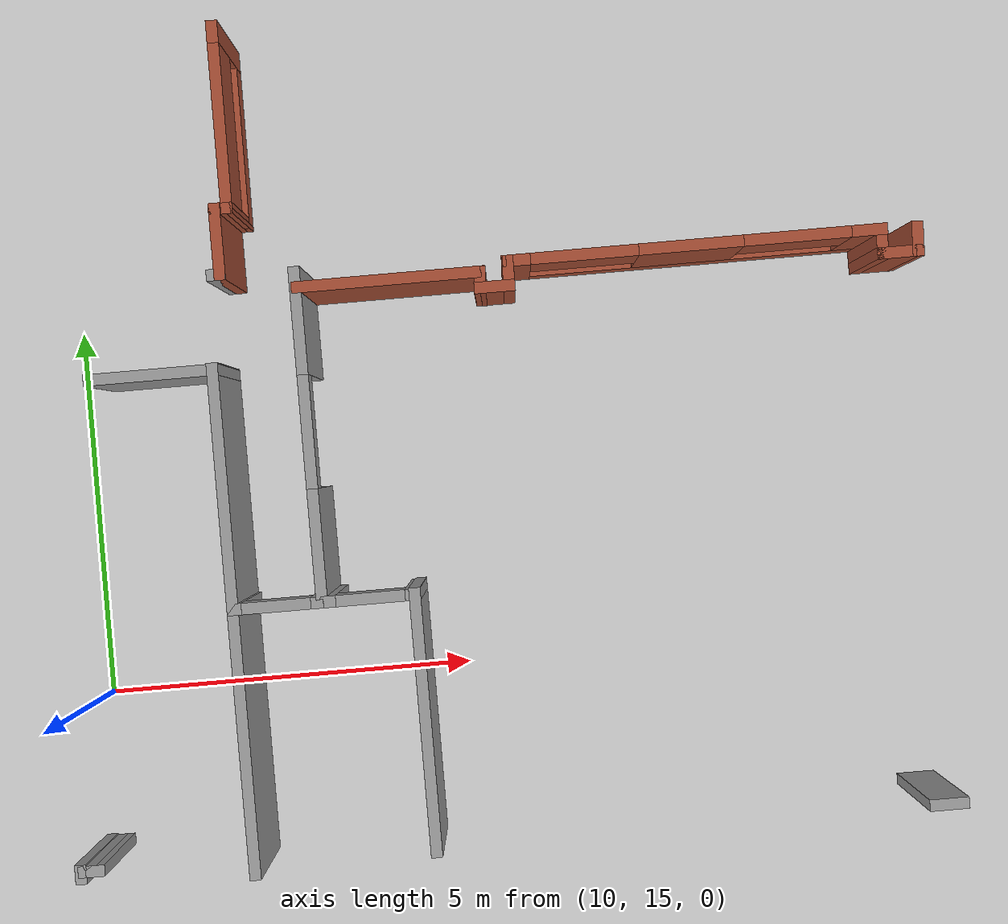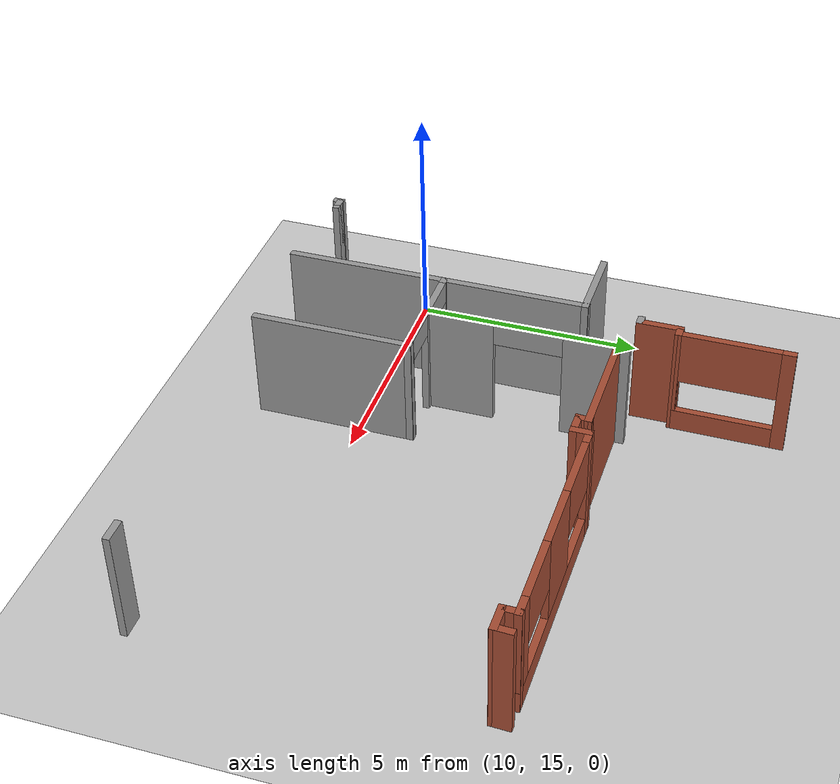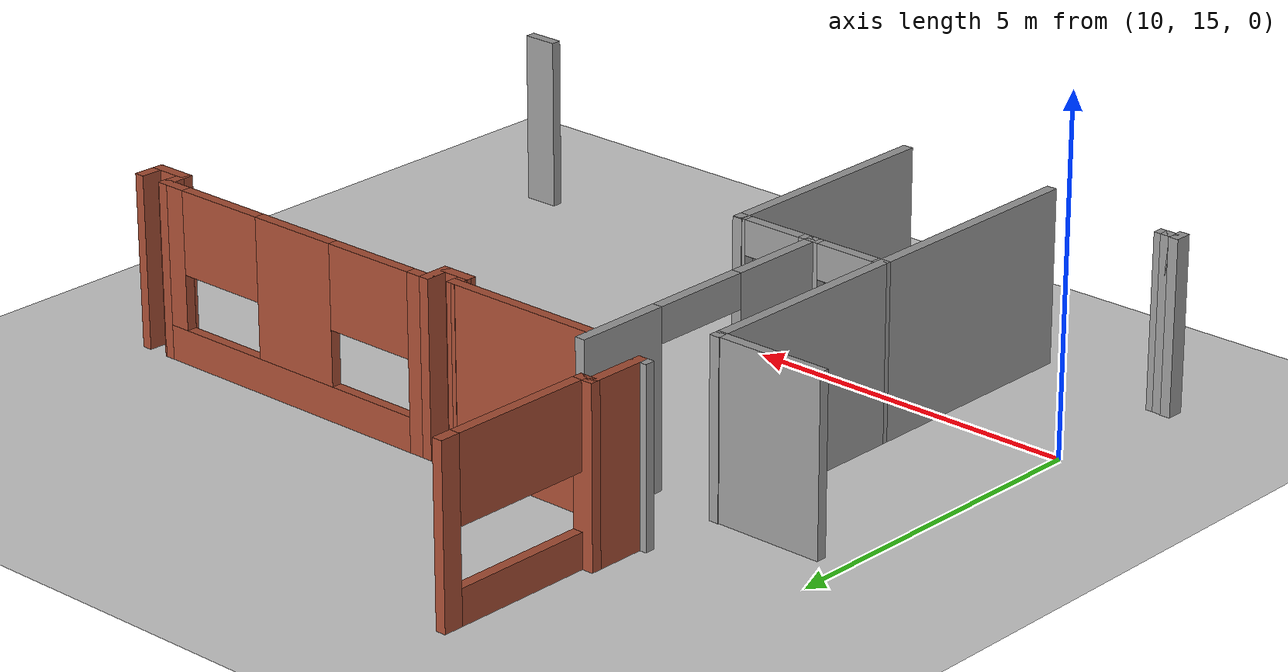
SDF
<sdf version="1.6">
 <world name="default">
  <model name="ground_plane">
   <static>1</static>
   <link name="link">
    <collision name="collision">
     <geometry><plane><normal>0 0 1</normal><size>100 100</size></plane></geometry>
     <surface><friction><ode><mu>100</mu><mu2>50</mu2></ode></friction></surface>
    </collision>
    <visual name="visual">
     <cast_shadows>0</cast_shadows>
     <geometry><plane><normal>0 0 1</normal><size>100 100</size></plane></geometry>
     <material>
      <script><uri>file://media/materials/scripts/gazebo.material</uri><name>Gazebo/Grey</name></script>
     </material>
    </visual>
   </link>
  </model>
  <model name="CVSSP">
   <pose>23.8714 24.094 0 0 -0 0</pose>
   <link name="Wall_451">
    <collision name="Wall_451_Collision">
     <geometry><box><size>0.25 0.15 2.5</size></box></geometry>
     <pose>0 0 1.25 0 -0 0</pose>
    </collision>
    <visual name="Wall_451_Visual">
     <pose>0 0 1.25 0 -0 0</pose>
     <geometry><box><size>0.25 0.15 2.5</size></box></geometry>
     <material>
      <script><uri>file://media/materials/scripts/gazebo.material</uri><name>Gazebo/Grey</name></script>
      <ambient>1 1 1 1</ambient>
     </material>
    </visual>
    <pose>-11.6734 -3.62478 0 0 -0 0</pose>
   </link>
   <link name="Wall_452">
    <collision name="Wall_452_Collision">
     <geometry><box><size>1 0.15 2.5</size></box></geometry>
     <pose>0 0 1.25 0 -0 0</pose>
    </collision>
    <visual name="Wall_452_Visual">
     <pose>0 0 1.25 0 -0 0</pose>
     <geometry><box><size>1 0.15 2.5</size></box></geometry>
     <material>
      <script><uri>file://media/materials/scripts/gazebo.material</uri><name>Gazebo/Bricks</name></script>
      <ambient>1 1 1 1</ambient>
     </material>
    </visual>
    <pose>-11.6234 -3.19978 0 0 -0 1.5708</pose>
   </link>
   <link name="Wall_453">
    <collision name="Wall_453_Collision">
     <geometry><box><size>0.31087 0.15 2.5</size></box></geometry>
     <pose>0 0 1.25 0 -0 0</pose>
    </collision>
    <visual name="Wall_453_Visual">
     <pose>0 0 1.25 0 -0 0</pose>
     <geometry><box><size>0.31087 0.15 2.5</size></box></geometry>
     <material>
      <script><uri>file://media/materials/scripts/gazebo.material</uri><name>Gazebo/Bricks</name></script>
      <ambient>1 1 1 1</ambient>
     </material>
    </visual>
    <pose>-11.543 -2.77478 0 0 -0 0</pose>
   </link>
   <link name="Wall_456">
    <pose>-11.4588 -1.59696 0 0 0 -1.57398</pose>
    <visual name="Wall_456_Visual_0">
     <pose>-1.10718 0 1.25 0 -0 0</pose>
     <geometry><box><size>0.291309 0.15 2.5</size></box></geometry>
     <material>
      <script><uri>file://media/materials/scripts/gazebo.material</uri><name>Gazebo/Bricks</name></script>
      <ambient>1 1 1 1</ambient>
     </material>
    </visual>
    <collision name="Wall_456_Collision_0">
     <geometry><box><size>0.291309 0.15 2.5</size></box></geometry>
     <pose>-1.10718 0 1.25 0 -0 0</pose>
    </collision>
    <visual name="Wall_456_Visual_1">
     <pose>0.145655 0 0.25 0 -0 0</pose>
     <geometry><box><size>2.21435 0.15 0.5</size></box></geometry>
     <material>
      <script><uri>file://media/materials/scripts/gazebo.material</uri><name>Gazebo/Bricks</name></script>
      <ambient>1 1 1 1</ambient>
     </material>
    </visual>
    <collision name="Wall_456_Collision_1">
     <geometry><box><size>2.21435 0.15 0.5</size></box></geometry>
     <pose>0.145655 0 0.25 0 -0 0</pose>
    </collision>
    <visual name="Wall_456_Visual_2">
     <pose>1.18044 0 1.5 0 -0 0</pose>
     <geometry><box><size>0.144785 0.15 2</size></box></geometry>
     <material>
      <script><uri>file://media/materials/scripts/gazebo.material</uri><name>Gazebo/Bricks</name></script>
      <ambient>1 1 1 1</ambient>
     </material>
    </visual>
    <collision name="Wall_456_Collision_2">
     <geometry><box><size>0.144785 0.15 2</size></box></geometry>
     <pose>1.18044 0 1.5 0 -0 0</pose>
    </collision>
    <visual name="Wall_456_Visual_3">
     <pose>0.073262 0 1.9 0 -0 0</pose>
     <geometry><box><size>2.06957 0.15 1.2</size></box></geometry>
     <material>
      <script><uri>file://media/materials/scripts/gazebo.material</uri><name>Gazebo/Bricks</name></script>
      <ambient>1 1 1 1</ambient>
     </material>
    </visual>
    <collision name="Wall_456_Collision_3">
     <geometry><box><size>2.06957 0.15 1.2</size></box></geometry>
     <pose>0.073262 0 1.9 0 -0 0</pose>
    </collision>
   </link>
   <link name="Wall_524">
    <pose>-10.6649 -5.806 0 0 0 -1.5708</pose>
    <visual name="Wall_524_Visual_0">
     <pose>-1.50177 0 1.25 0 -0 0</pose>
     <geometry><box><size>1.40395 0.15 2.5</size></box></geometry>
     <material>
      <script><uri>file://media/materials/scripts/gazebo.material</uri><name>Gazebo/Grey</name></script>
      <ambient>0.588235 0.588235 0.588235 1</ambient>
     </material>
    </visual>
    <collision name="Wall_524_Collision_0">
     <geometry><box><size>1.40395 0.15 2.5</size></box></geometry>
     <pose>-1.50177 0 1.25 0 -0 0</pose>
    </collision>
    <visual name="Wall_524_Visual_1">
     <pose>1.44258 0 1.25 0 -0 0</pose>
     <geometry><box><size>1.52232 0.15 2.5</size></box></geometry>
     <material>
      <script><uri>file://media/materials/scripts/gazebo.material</uri><name>Gazebo/Grey</name></script>
      <ambient>0.588235 0.588235 0.588235 1</ambient>
     </material>
    </visual>
    <collision name="Wall_524_Collision_1">
     <geometry><box><size>1.52232 0.15 2.5</size></box></geometry>
     <pose>1.44258 0 1.25 0 -0 0</pose>
    </collision>
    <visual name="Wall_524_Visual_2">
     <pose>-0.059186 0 2.25 0 -0 0</pose>
     <geometry><box><size>1.48121 0.15 0.5</size></box></geometry>
     <material>
      <script><uri>file://media/materials/scripts/gazebo.material</uri><name>Gazebo/Grey</name></script>
      <ambient>0.588235 0.588235 0.588235 1</ambient>
     </material>
    </visual>
    <collision name="Wall_524_Collision_2">
     <geometry><box><size>1.48121 0.15 0.5</size></box></geometry>
     <pose>-0.059186 0 2.25 0 -0 0</pose>
    </collision>
   </link>
   <link name="Wall_525">
    <pose>-11.2447 -7.9568 0 0 -0 3.13973</pose>
    <visual name="Wall_525_Visual_0">
     <pose>-0.544548 0 1.25 0 -0 0</pose>
     <geometry><box><size>0.220502 0.15 2.5</size></box></geometry>
     <material>
      <script><uri>file://media/materials/scripts/gazebo.material</uri><name>Gazebo/Grey</name></script>
      <ambient>0.588235 0.588235 0.588235 1</ambient>
     </material>
    </visual>
    <collision name="Wall_525_Collision_0">
     <geometry><box><size>0.220502 0.15 2.5</size></box></geometry>
     <pose>-0.544548 0 1.25 0 -0 0</pose>
    </collision>
    <visual name="Wall_525_Visual_1">
     <pose>0.560251 0 1.25 0 -0 0</pose>
     <geometry><box><size>0.189095 0.15 2.5</size></box></geometry>
     <material>
      <script><uri>file://media/materials/scripts/gazebo.material</uri><name>Gazebo/Grey</name></script>
      <ambient>0.588235 0.588235 0.588235 1</ambient>
     </material>
    </visual>
    <collision name="Wall_525_Collision_1">
     <geometry><box><size>0.189095 0.15 2.5</size></box></geometry>
     <pose>0.560251 0 1.25 0 -0 0</pose>
    </collision>
    <visual name="Wall_525_Visual_2">
     <pose>0.015703 0 2.25 0 -0 0</pose>
     <geometry><box><size>0.9 0.15 0.5</size></box></geometry>
     <material>
      <script><uri>file://media/materials/scripts/gazebo.material</uri><name>Gazebo/Grey</name></script>
      <ambient>0.588235 0.588235 0.588235 1</ambient>
     </material>
    </visual>
    <collision name="Wall_525_Collision_2">
     <geometry><box><size>0.9 0.15 0.5</size></box></geometry>
     <pose>0.015703 0 2.25 0 -0 0</pose>
    </collision>
   </link>
   <link name="Wall_526">
    <collision name="Wall_526_Collision">
     <geometry><box><size>3.58305 0.15 2.5</size></box></geometry>
     <pose>0 0 1.25 0 -0 0</pose>
    </collision>
    <visual name="Wall_526_Visual">
     <pose>0 0 1.25 0 -0 0</pose>
     <geometry><box><size>3.58305 0.15 2.5</size></box></geometry>
     <material>
      <script><uri>file://media/materials/scripts/gazebo.material</uri><name>Gazebo/Grey</name></script>
      <ambient>0.588235 0.588235 0.588235 1</ambient>
     </material>
    </visual>
    <pose>-11.8234 -9.67224 0 0 0 -1.5702</pose>
   </link>
   <link name="Wall_528">
    <pose>-10.0632 -7.95787 0 0 -0 0</pose>
    <visual name="Wall_528_Visual_0">
     <pose>-0.550159 0 1.25 0 -0 0</pose>
     <geometry><box><size>0.253402 0.15 2.5</size></box></geometry>
     <material>
      <script><uri>file://media/materials/scripts/gazebo.material</uri><name>Gazebo/Grey</name></script>
      <ambient>0.588235 0.588235 0.588235 1</ambient>
     </material>
    </visual>
    <collision name="Wall_528_Collision_0">
     <geometry><box><size>0.253402 0.15 2.5</size></box></geometry>
     <pose>-0.550159 0 1.25 0 -0 0</pose>
    </collision>
    <visual name="Wall_528_Visual_1">
     <pose>0.576701 0 1.25 0 -0 0</pose>
     <geometry><box><size>0.200318 0.15 2.5</size></box></geometry>
     <material>
      <script><uri>file://media/materials/scripts/gazebo.material</uri><name>Gazebo/Grey</name></script>
      <ambient>0.588235 0.588235 0.588235 1</ambient>
     </material>
    </visual>
    <collision name="Wall_528_Collision_1">
     <geometry><box><size>0.200318 0.15 2.5</size></box></geometry>
     <pose>0.576701 0 1.25 0 -0 0</pose>
    </collision>
    <visual name="Wall_528_Visual_2">
     <pose>0.026542 0 2.25 0 -0 0</pose>
     <geometry><box><size>0.9 0.15 0.5</size></box></geometry>
     <material>
      <script><uri>file://media/materials/scripts/gazebo.material</uri><name>Gazebo/Grey</name></script>
      <ambient>0.588235 0.588235 0.588235 1</ambient>
     </material>
    </visual>
    <collision name="Wall_528_Collision_2">
     <geometry><box><size>0.9 0.15 0.5</size></box></geometry>
     <pose>0.026542 0 2.25 0 -0 0</pose>
    </collision>
   </link>
   <link name="Wall_529">
    <collision name="Wall_529_Collision">
     <geometry><box><size>3.5 0.15 2.5</size></box></geometry>
     <pose>0 0 1.25 0 -0 0</pose>
    </collision>
    <visual name="Wall_529_Visual">
     <pose>0 0 1.25 0 -0 0</pose>
     <geometry><box><size>3.5 0.15 2.5</size></box></geometry>
     <material>
      <script><uri>file://media/materials/scripts/gazebo.material</uri><name>Gazebo/Grey</name></script>
      <ambient>0.588235 0.588235 0.588235 1</ambient>
     </material>
    </visual>
    <pose>-9.4614 -9.62137 0 0 0 -1.5708</pose>
   </link>
   <link name="Wall_531">
    <collision name="Wall_531_Collision">
     <geometry><box><size>3.27645 0.15 2.5</size></box></geometry>
     <pose>0 0 1.25 0 -0 0</pose>
    </collision>
    <visual name="Wall_531_Visual">
     <pose>0 0 1.25 0 -0 0</pose>
     <geometry><box><size>3.27645 0.15 2.5</size></box></geometry>
     <material>
      <script><uri>file://media/materials/scripts/gazebo.material</uri><name>Gazebo/Grey</name></script>
      <ambient>0.588235 0.588235 0.588235 1</ambient>
     </material>
    </visual>
    <pose>-11.8245 -6.39249 0 0 -0 1.5708</pose>
   </link>
   <link name="Wall_558">
    <collision name="Wall_558_Collision">
     <geometry><box><size>0.25 0.15 2.5</size></box></geometry>
     <pose>0 0 1.25 0 -0 0</pose>
    </collision>
    <visual name="Wall_558_Visual">
     <pose>0 0 1.25 0 -0 0</pose>
     <geometry><box><size>0.25 0.15 2.5</size></box></geometry>
     <material>
      <script><uri>file://media/materials/scripts/gazebo.material</uri><name>Gazebo/Grey</name></script>
      <ambient>1 1 1 1</ambient>
     </material>
    </visual>
    <pose>-13.8779 -11.1683 0 0 -0 3.14159</pose>
   </link>
   <link name="Wall_559">
    <collision name="Wall_559_Collision">
     <geometry><box><size>0.25 0.15 2.5</size></box></geometry>
     <pose>0 0 1.25 0 -0 0</pose>
    </collision>
    <visual name="Wall_559_Visual">
     <pose>0 0 1.25 0 -0 0</pose>
     <geometry><box><size>0.25 0.15 2.5</size></box></geometry>
     <material>
      <script><uri>file://media/materials/scripts/gazebo.material</uri><name>Gazebo/Grey</name></script>
      <ambient>1 1 1 1</ambient>
     </material>
    </visual>
    <pose>-13.9779 -11.1683 0 0 -0 3.14159</pose>
   </link>
   <link name="Wall_562">
    <collision name="Wall_562_Collision">
     <geometry><box><size>0.249529 0.15 2.5</size></box></geometry>
     <pose>0 0 1.25 0 -0 0</pose>
    </collision>
    <visual name="Wall_562_Visual">
     <pose>0 0 1.25 0 -0 0</pose>
     <geometry><box><size>0.249529 0.15 2.5</size></box></geometry>
     <material>
      <script><uri>file://media/materials/scripts/gazebo.material</uri><name>Gazebo/Grey</name></script>
      <ambient>1 1 1 1</ambient>
     </material>
    </visual>
    <pose>-14.0684 -11.2015 0 0 0 -1.5708</pose>
   </link>
   <link name="Wall_588">
    <collision name="Wall_588_Collision">
     <geometry><box><size>1.75 0.15 2.5</size></box></geometry>
     <pose>0 0 1.25 0 -0 0</pose>
    </collision>
    <visual name="Wall_588_Visual">
     <pose>0 0 1.25 0 -0 0</pose>
     <geometry><box><size>1.75 0.15 2.5</size></box></geometry>
     <material>
      <script><uri>file://media/materials/scripts/gazebo.material</uri><name>Gazebo/Grey</name></script>
      <ambient>1 1 1 1</ambient>
     </material>
    </visual>
    <pose>-12.6245 -4.84249 0 0 -0 0</pose>
   </link>
   <link name="Wall_800">
    <collision name="Wall_800_Collision">
     <geometry><box><size>2.52089 0.15 2.5</size></box></geometry>
     <pose>0 0 1.25 0 -0 0</pose>
    </collision>
    <visual name="Wall_800_Visual">
     <pose>0 0 1.25 0 -0 0</pose>
     <geometry><box><size>2.52089 0.15 2.5</size></box></geometry>
     <material>
      <script><uri>file://media/materials/scripts/gazebo.material</uri><name>Gazebo/Bricks</name></script>
      <ambient>1 1 1 1</ambient>
     </material>
    </visual>
    <pose>-9.45754 -3.87382 0 0 -0 0</pose>
   </link>
   <link name="Wall_801">
    <collision name="Wall_801_Collision">
     <geometry><box><size>0.358175 0.15 2.5</size></box></geometry>
     <pose>0 0 1.25 0 -0 0</pose>
    </collision>
    <visual name="Wall_801_Visual">
     <pose>0 0 1.25 0 -0 0</pose>
     <geometry><box><size>0.358175 0.15 2.5</size></box></geometry>
     <material>
      <script><uri>file://media/materials/scripts/gazebo.material</uri><name>Gazebo/Bricks</name></script>
      <ambient>1 1 1 1</ambient>
     </material>
    </visual>
    <pose>-8.27788 -3.9779 0 0 0 -1.6263</pose>
   </link>
   <link name="Wall_802">
    <collision name="Wall_802_Collision">
     <geometry><box><size>0.531655 0.15 2.5</size></box></geometry>
     <pose>0 0 1.25 0 -0 0</pose>
    </collision>
    <visual name="Wall_802_Visual">
     <pose>0 0 1.25 0 -0 0</pose>
     <geometry><box><size>0.531655 0.15 2.5</size></box></geometry>
     <material>
      <script><uri>file://media/materials/scripts/gazebo.material</uri><name>Gazebo/Bricks</name></script>
      <ambient>1 1 1 1</ambient>
     </material>
    </visual>
    <pose>-8.09283 -4.08199 0 0 -0 0</pose>
   </link>
   <link name="Wall_803">
    <collision name="Wall_803_Collision">
     <geometry><box><size>0.465304 0.15 2.5</size></box></geometry>
     <pose>0 0 1.25 0 -0 0</pose>
    </collision>
    <visual name="Wall_803_Visual">
     <pose>0 0 1.25 0 -0 0</pose>
     <geometry><box><size>0.465304 0.15 2.5</size></box></geometry>
     <material>
      <script><uri>file://media/materials/scripts/gazebo.material</uri><name>Gazebo/Bricks</name></script>
      <ambient>1 1 1 1</ambient>
     </material>
    </visual>
    <pose>-7.90201 -3.92434 0 0 -0 1.5708</pose>
   </link>
   <link name="Wall_805">
    <pose>-5.46544 -3.76669 0 0 -0 0</pose>
    <visual name="Wall_805_Visual_0">
     <pose>-2.31801 0 1.25 0 -0 0</pose>
     <geometry><box><size>0.363982 0.15 2.5</size></box></geometry>
     <material>
      <script><uri>file://media/materials/scripts/gazebo.material</uri><name>Gazebo/Bricks</name></script>
      <ambient>1 1 1 1</ambient>
     </material>
    </visual>
    <collision name="Wall_805_Collision_0">
     <geometry><box><size>0.363982 0.15 2.5</size></box></geometry>
     <pose>-2.31801 0 1.25 0 -0 0</pose>
    </collision>
    <visual name="Wall_805_Visual_1">
     <pose>0.181991 0 0.25 0 -0 0</pose>
     <geometry><box><size>4.63602 0.15 0.5</size></box></geometry>
     <material>
      <script><uri>file://media/materials/scripts/gazebo.material</uri><name>Gazebo/Bricks</name></script>
      <ambient>1 1 1 1</ambient>
     </material>
    </visual>
    <collision name="Wall_805_Collision_1">
     <geometry><box><size>4.63602 0.15 0.5</size></box></geometry>
     <pose>0.181991 0 0.25 0 -0 0</pose>
    </collision>
    <visual name="Wall_805_Visual_2">
     <pose>-0.045965 0 1.5 0 -0 0</pose>
     <geometry><box><size>1.36592 0.15 2</size></box></geometry>
     <material>
      <script><uri>file://media/materials/scripts/gazebo.material</uri><name>Gazebo/Bricks</name></script>
      <ambient>1 1 1 1</ambient>
     </material>
    </visual>
    <collision name="Wall_805_Collision_2">
     <geometry><box><size>1.36592 0.15 2</size></box></geometry>
     <pose>-0.045965 0 1.5 0 -0 0</pose>
    </collision>
    <visual name="Wall_805_Visual_3">
     <pose>2.26822 0 1.5 0 -0 0</pose>
     <geometry><box><size>0.463553 0.15 2</size></box></geometry>
     <material>
      <script><uri>file://media/materials/scripts/gazebo.material</uri><name>Gazebo/Bricks</name></script>
      <ambient>1 1 1 1</ambient>
     </material>
    </visual>
    <collision name="Wall_805_Collision_3">
     <geometry><box><size>0.463553 0.15 2</size></box></geometry>
     <pose>2.26822 0 1.5 0 -0 0</pose>
    </collision>
    <visual name="Wall_805_Visual_4">
     <pose>-1.43247 0 1.9 0 -0 0</pose>
     <geometry><box><size>1.40709 0.15 1.2</size></box></geometry>
     <material>
      <script><uri>file://media/materials/scripts/gazebo.material</uri><name>Gazebo/Bricks</name></script>
      <ambient>1 1 1 1</ambient>
     </material>
    </visual>
    <collision name="Wall_805_Collision_4">
     <geometry><box><size>1.40709 0.15 1.2</size></box></geometry>
     <pose>-1.43247 0 1.9 0 -0 0</pose>
    </collision>
    <visual name="Wall_805_Visual_5">
     <pose>1.33672 0 1.9 0 -0 0</pose>
     <geometry><box><size>1.39945 0.15 1.2</size></box></geometry>
     <material>
      <script><uri>file://media/materials/scripts/gazebo.material</uri><name>Gazebo/Bricks</name></script>
      <ambient>1 1 1 1</ambient>
     </material>
    </visual>
    <collision name="Wall_805_Collision_5">
     <geometry><box><size>1.39945 0.15 1.2</size></box></geometry>
     <pose>1.33672 0 1.9 0 -0 0</pose>
    </collision>
   </link>
   <link name="Wall_806">
    <collision name="Wall_806_Collision">
     <geometry><box><size>0.465304 0.15 2.5</size></box></geometry>
     <pose>0 0 1.25 0 -0 0</pose>
    </collision>
    <visual name="Wall_806_Visual">
     <pose>0 0 1.25 0 -0 0</pose>
     <geometry><box><size>0.465304 0.15 2.5</size></box></geometry>
     <material>
      <script><uri>file://media/materials/scripts/gazebo.material</uri><name>Gazebo/Bricks</name></script>
      <ambient>1 1 1 1</ambient>
     </material>
    </visual>
    <pose>-3.05201 -3.92434 0 0 0 -1.5708</pose>
   </link>
   <link name="Wall_807">
    <collision name="Wall_807_Collision">
     <geometry><box><size>0.60862 0.15 2.5</size></box></geometry>
     <pose>0 0 1.25 0 -0 0</pose>
    </collision>
    <visual name="Wall_807_Visual">
     <pose>0 0 1.25 0 -0 0</pose>
     <geometry><box><size>0.60862 0.15 2.5</size></box></geometry>
     <material>
      <script><uri>file://media/materials/scripts/gazebo.material</uri><name>Gazebo/Bricks</name></script>
      <ambient>1 1 1 1</ambient>
     </material>
    </visual>
    <pose>-2.82277 -4.08199 0 0 -0 0</pose>
   </link>
   <link name="Wall_808">
    <collision name="Wall_808_Collision">
     <geometry><box><size>0.453959 0.15 2.5</size></box></geometry>
     <pose>0 0 1.25 0 -0 0</pose>
    </collision>
    <visual name="Wall_808_Visual">
     <pose>0 0 1.25 0 -0 0</pose>
     <geometry><box><size>0.453959 0.15 2.5</size></box></geometry>
     <material>
      <script><uri>file://media/materials/scripts/gazebo.material</uri><name>Gazebo/Bricks</name></script>
      <ambient>1 1 1 1</ambient>
     </material>
    </visual>
    <pose>-2.58775 -3.93012 0 0 -0 1.53274</pose>
   </link>
   <link name="Wall_849">
    <collision name="Wall_849_Collision">
     <geometry><box><size>0.513155 0.15 2.5</size></box></geometry>
     <pose>0 0 1.25 0 -0 0</pose>
    </collision>
    <visual name="Wall_849_Visual">
     <pose>0 0 1.25 0 -0 0</pose>
     <geometry><box><size>0.513155 0.15 2.5</size></box></geometry>
     <material>
      <script><uri>file://media/materials/scripts/gazebo.material</uri><name>Gazebo/Grey</name></script>
      <ambient>1 1 1 1</ambient>
     </material>
    </visual>
    <pose>-2.80222 -11.2451 0 0 -0 0</pose>
   </link>
   <static>1</static>
  </model>
 </world>
</sdf>
